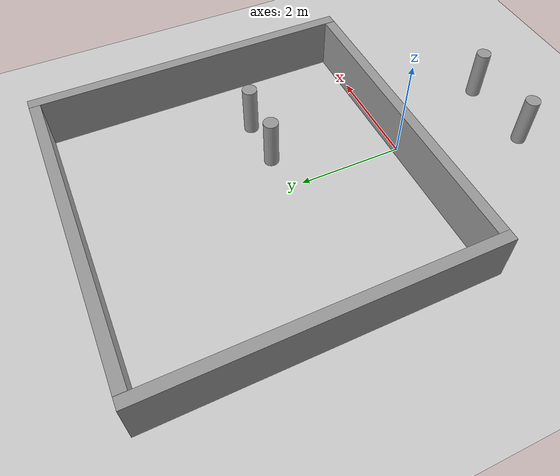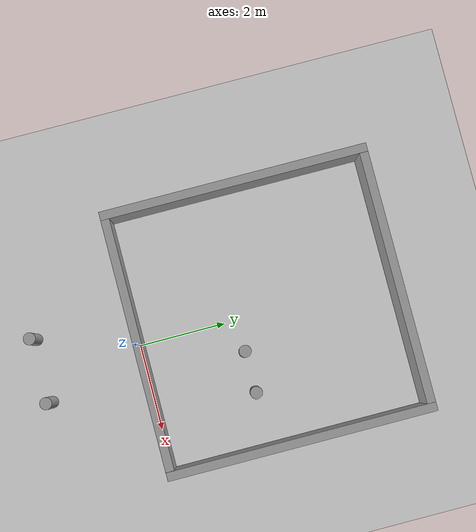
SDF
<sdf version="1.6">
 <world name="default">
  <light name="sun" type="directional">
   <pose>0 0 10 0 -0 0</pose>
   <diffuse>0.8 0.8 0.8 1</diffuse>
   <specular>0.2 0.2 0.2 1</specular>
   <attenuation>
    <range>1000</range>
    <constant>0.9</constant>
    <linear>0.01</linear>
    <quadratic>0.001</quadratic>
   </attenuation>
   <direction>-0.5 0.1 -0.9</direction>
  </light>
  <model name="ground_plane">
   <static>1</static>
   <link name="link">
    <collision name="collision">
     <geometry><plane><normal>0 0 1</normal><size>100 100</size></plane></geometry>
     <surface>
      <contact><collide_bitmask>65535</collide_bitmask></contact>
      <friction><ode><mu>100</mu><mu2>50</mu2></ode></friction>
     </surface>
    </collision>
    <visual name="visual">
     <cast_shadows>0</cast_shadows>
     <geometry><plane><normal>0 0 1</normal><size>100 100</size></plane></geometry>
     <material>
      <script><uri>file://media/materials/scripts/gazebo.material</uri><name>Gazebo/Grey</name></script>
     </material>
    </visual>
   </link>
  </model>
  <gravity>0 0 -9.8</gravity>
  <magnetic_field>6e-06 2.3e-05 -4.2e-05</magnetic_field>
  <atmosphere type="adiabatic"/>
  <physics name="default_physics" default="0" type="ode">
   <max_step_size>0.001</max_step_size>
   <real_time_factor>1</real_time_factor>
   <real_time_update_rate>1000</real_time_update_rate>
  </physics>
  <scene><ambient>0.4 0.4 0.4 1</ambient><background>0.7 0.7 0.7 1</background><shadows>1</shadows></scene>
  <audio><device>default</device></audio>
  <spherical_coordinates>
   <surface_model>EARTH_WGS84</surface_model>
   <latitude_deg>0</latitude_deg>
   <longitude_deg>0</longitude_deg>
   <elevation>0</elevation>
   <heading_deg>0</heading_deg>
  </spherical_coordinates>
  <model name="cylinder1">
   <link name="cylink1">
    <inertial>
     <mass>500</mass>
     <inertia><ixx>0.145833</ixx><ixy>0</ixy><ixz>0</ixz><iyy>0.145833</iyy><iyz>0</iyz><izz>0.125</izz></inertia>
    </inertial>
    <visual name="visual">
     <geometry><cylinder><radius>0.14</radius><length>1</length></cylinder></geometry>
     <material>
      <script><name>Gazebo/Grey</name><uri>file://media/materials/scripts/gazebo.material</uri></script>
      <shader type="vertex"><normal_map>__default__</normal_map></shader>
      <ambient>0.3 0.3 0.3 1</ambient>
      <diffuse>0.7 0.7 0.7 1</diffuse>
      <specular>0.01 0.01 0.01 1</specular>
      <emissive>0 0 0 1</emissive>
     </material>
    </visual>
    <collision name="collision">
     <geometry><cylinder><radius>0.14</radius><length>1</length></cylinder></geometry>
     <surface>
      <friction>
       <ode><mu>1</mu><mu2>1</mu2><fdir1>0 0 0</fdir1><slip1>0</slip1><slip2>0</slip2></ode>
       <torsional>
        <coefficient>1</coefficient>
        <patch_radius>0</patch_radius>
        <surface_radius>0</surface_radius>
        <use_patch_radius>1</use_patch_radius>
        <ode><slip>0</slip></ode>
       </torsional>
      </friction>
      <bounce><restitution_coefficient>0</restitution_coefficient><threshold>1e+06</threshold></bounce>
      <contact>
       <collide_without_contact>0</collide_without_contact>
       <collide_without_contact_bitmask>1</collide_without_contact_bitmask>
       <collide_bitmask>1</collide_bitmask>
       <ode>
        <soft_cfm>0</soft_cfm>
        <soft_erp>0.2</soft_erp>
        <kp>1e+13</kp>
        <kd>1</kd>
        <max_vel>0.01</max_vel>
        <min_depth>0</min_depth>
       </ode>
       <bullet>
        <split_impulse>1</split_impulse>
        <split_impulse_penetration_threshold>-0.01</split_impulse_penetration_threshold>
        <soft_cfm>0</soft_cfm>
        <soft_erp>0.2</soft_erp>
        <kp>1e+13</kp>
        <kd>1</kd>
       </bullet>
      </contact>
     </surface>
    </collision>
   </link>
   <static>0</static>
   <pose>-0.744466 -2.29124 0.5 0 -0 0</pose>
  </model>
  <model name="cylinder2">
   <link name="cylink2">
    <inertial>
     <mass>500</mass>
     <inertia><ixx>0.145833</ixx><ixy>0</ixy><ixz>0</ixz><iyy>0.145833</iyy><iyz>0</iyz><izz>0.125</izz></inertia>
    </inertial>
    <visual name="visual">
     <geometry><cylinder><radius>0.14</radius><length>1</length></cylinder></geometry>
     <material>
      <script><name>Gazebo/Grey</name><uri>file://media/materials/scripts/gazebo.material</uri></script>
      <shader type="vertex"><normal_map>__default__</normal_map></shader>
      <ambient>0.3 0.3 0.3 1</ambient>
      <diffuse>0.7 0.7 0.7 1</diffuse>
      <specular>0.01 0.01 0.01 1</specular>
      <emissive>0 0 0 1</emissive>
     </material>
    </visual>
    <collision name="collision">
     <geometry><cylinder><radius>0.14</radius><length>1</length></cylinder></geometry>
     <surface>
      <friction>
       <ode><mu>1</mu><mu2>1</mu2><fdir1>0 0 0</fdir1><slip1>0</slip1><slip2>0</slip2></ode>
       <torsional>
        <coefficient>1</coefficient>
        <patch_radius>0</patch_radius>
        <surface_radius>0</surface_radius>
        <use_patch_radius>1</use_patch_radius>
        <ode><slip>0</slip></ode>
       </torsional>
      </friction>
      <bounce><restitution_coefficient>0</restitution_coefficient><threshold>1e+06</threshold></bounce>
      <contact>
       <collide_without_contact>0</collide_without_contact>
       <collide_without_contact_bitmask>1</collide_without_contact_bitmask>
       <collide_bitmask>1</collide_bitmask>
       <ode>
        <soft_cfm>0</soft_cfm>
        <soft_erp>0.2</soft_erp>
        <kp>1e+13</kp>
        <kd>1</kd>
        <max_vel>0.01</max_vel>
        <min_depth>0</min_depth>
       </ode>
       <bullet>
        <split_impulse>1</split_impulse>
        <split_impulse_penetration_threshold>-0.01</split_impulse_penetration_threshold>
        <soft_cfm>0</soft_cfm>
        <soft_erp>0.2</soft_erp>
        <kp>1e+13</kp>
        <kd>1</kd>
       </bullet>
      </contact>
     </surface>
    </collision>
   </link>
   <static>0</static>
   <pose>0.744466 -2.29124 0.5 0 -0 0</pose>
  </model>
  <model name="cylinder3">
   <link name="cylink3">
    <inertial>
     <mass>500</mass>
     <inertia><ixx>0.145833</ixx><ixy>0</ixy><ixz>0</ixz><iyy>0.145833</iyy><iyz>0</iyz><izz>0.125</izz></inertia>
    </inertial>
    <visual name="visual">
     <geometry><cylinder><radius>0.14</radius><length>1</length></cylinder></geometry>
     <material>
      <script><name>Gazebo/Grey</name><uri>file://media/materials/scripts/gazebo.material</uri></script>
      <shader type="vertex"><normal_map>__default__</normal_map></shader>
      <ambient>0.3 0.3 0.3 1</ambient>
      <diffuse>0.7 0.7 0.7 1</diffuse>
      <specular>0.01 0.01 0.01 1</specular>
      <emissive>0 0 0 1</emissive>
     </material>
    </visual>
    <collision name="collision">
     <geometry><cylinder><radius>0.14</radius><length>1</length></cylinder></geometry>
     <surface>
      <friction>
       <ode><mu>1</mu><mu2>1</mu2><fdir1>0 0 0</fdir1><slip1>0</slip1><slip2>0</slip2></ode>
       <torsional>
        <coefficient>1</coefficient>
        <patch_radius>0</patch_radius>
        <surface_radius>0</surface_radius>
        <use_patch_radius>1</use_patch_radius>
        <ode><slip>0</slip></ode>
       </torsional>
      </friction>
      <bounce><restitution_coefficient>0</restitution_coefficient><threshold>1e+06</threshold></bounce>
      <contact>
       <collide_without_contact>0</collide_without_contact>
       <collide_without_contact_bitmask>1</collide_without_contact_bitmask>
       <collide_bitmask>1</collide_bitmask>
       <ode>
        <soft_cfm>0</soft_cfm>
        <soft_erp>0.2</soft_erp>
        <kp>1e+13</kp>
        <kd>1</kd>
        <max_vel>0.01</max_vel>
        <min_depth>0</min_depth>
       </ode>
       <bullet>
        <split_impulse>1</split_impulse>
        <split_impulse_penetration_threshold>-0.01</split_impulse_penetration_threshold>
        <soft_cfm>0</soft_cfm>
        <soft_erp>0.2</soft_erp>
        <kp>1e+13</kp>
        <kd>1</kd>
       </bullet>
      </contact>
     </surface>
    </collision>
   </link>
   <static>0</static>
   <pose>0.744466 2.29124 0.5 0 -0 0</pose>
  </model>
  <model name="cylinder4">
   <link name="cylink4">
    <inertial>
     <mass>500</mass>
     <inertia><ixx>0.145833</ixx><ixy>0</ixy><ixz>0</ixz><iyy>0.145833</iyy><iyz>0</iyz><izz>0.125</izz></inertia>
    </inertial>
    <visual name="visual">
     <geometry><cylinder><radius>0.14</radius><length>1</length></cylinder></geometry>
     <material>
      <script><name>Gazebo/Grey</name><uri>file://media/materials/scripts/gazebo.material</uri></script>
      <shader type="vertex"><normal_map>__default__</normal_map></shader>
      <ambient>0.3 0.3 0.3 1</ambient>
      <diffuse>0.7 0.7 0.7 1</diffuse>
      <specular>0.01 0.01 0.01 1</specular>
      <emissive>0 0 0 1</emissive>
     </material>
    </visual>
    <collision name="collision">
     <geometry><cylinder><radius>0.14</radius><length>1</length></cylinder></geometry>
     <surface>
      <friction>
       <ode><mu>1</mu><mu2>1</mu2><fdir1>0 0 0</fdir1><slip1>0</slip1><slip2>0</slip2></ode>
       <torsional>
        <coefficient>1</coefficient>
        <patch_radius>0</patch_radius>
        <surface_radius>0</surface_radius>
        <use_patch_radius>1</use_patch_radius>
        <ode><slip>0</slip></ode>
       </torsional>
      </friction>
      <bounce><restitution_coefficient>0</restitution_coefficient><threshold>1e+06</threshold></bounce>
      <contact>
       <collide_without_contact>0</collide_without_contact>
       <collide_without_contact_bitmask>1</collide_without_contact_bitmask>
       <collide_bitmask>1</collide_bitmask>
       <ode>
        <soft_cfm>0</soft_cfm>
        <soft_erp>0.2</soft_erp>
        <kp>1e+13</kp>
        <kd>1</kd>
        <max_vel>0.01</max_vel>
        <min_depth>0</min_depth>
       </ode>
       <bullet>
        <split_impulse>1</split_impulse>
        <split_impulse_penetration_threshold>-0.01</split_impulse_penetration_threshold>
        <soft_cfm>0</soft_cfm>
        <soft_erp>0.2</soft_erp>
        <kp>1e+13</kp>
        <kd>1</kd>
       </bullet>
      </contact>
     </surface>
    </collision>
   </link>
   <static>0</static>
   <pose>1.7 2.3 0.5 0 -0 0</pose>
  </model>
  <model name="fence">
   <link name="link">
    <inertial>
     <mass>100</mass>
     <inertia><ixx>16.6667</ixx><ixy>0</ixy><ixz>0</ixz><iyy>16.6667</iyy><iyz>0</iyz><izz>16.6667</izz></inertia>
    </inertial>
    <visual name="visual">
     <geometry><box><size>5.8 0.2 1</size></box></geometry>
     <material>
      <script><name>Gazebo/Grey</name><uri>file://media/materials/scripts/gazebo.material</uri></script>
      <shader type="vertex"><normal_map>__default__</normal_map></shader>
      <ambient>0.3 0.3 0.3 1</ambient>
      <diffuse>0.7 0.7 0.7 1</diffuse>
      <specular>0.01 0.01 0.01 1</specular>
      <emissive>0 0 0 1</emissive>
     </material>
    </visual>
    <collision name="collision">
     <geometry><box><size>5.8 0.2 1</size></box></geometry>
     <surface>
      <friction>
       <ode><mu>1</mu><mu2>1</mu2><fdir1>0 0 0</fdir1><slip1>0</slip1><slip2>0</slip2></ode>
       <torsional>
        <coefficient>1</coefficient>
        <patch_radius>0</patch_radius>
        <surface_radius>0</surface_radius>
        <use_patch_radius>1</use_patch_radius>
        <ode><slip>0</slip></ode>
       </torsional>
      </friction>
      <bounce><restitution_coefficient>0</restitution_coefficient><threshold>1e+06</threshold></bounce>
      <contact>
       <collide_without_contact>0</collide_without_contact>
       <collide_without_contact_bitmask>1</collide_without_contact_bitmask>
       <collide_bitmask>1</collide_bitmask>
       <ode>
        <soft_cfm>0</soft_cfm>
        <soft_erp>0.2</soft_erp>
        <kp>1e+13</kp>
        <kd>1</kd>
        <max_vel>0.01</max_vel>
        <min_depth>0</min_depth>
       </ode>
       <bullet>
        <split_impulse>1</split_impulse>
        <split_impulse_penetration_threshold>-0.01</split_impulse_penetration_threshold>
        <soft_cfm>0</soft_cfm>
        <soft_erp>0.2</soft_erp>
        <kp>1e+13</kp>
        <kd>1</kd>
       </bullet>
      </contact>
     </surface>
    </collision>
   </link>
   <link name="link_clone">
    <inertial>
     <mass>100</mass>
     <inertia><ixx>16.6667</ixx><ixy>0</ixy><ixz>0</ixz><iyy>16.6667</iyy><iyz>0</iyz><izz>16.6667</izz></inertia>
    </inertial>
    <pose>-2.99969 3.00111 -2.9e-05 -1e-05 -0 1.5708</pose>
    <visual name="visual">
     <geometry><box><size>6.2 0.2 1</size></box></geometry>
     <material>
      <script><name>Gazebo/Grey</name><uri>file://media/materials/scripts/gazebo.material</uri></script>
      <shader type="vertex"><normal_map>__default__</normal_map></shader>
      <ambient>0.3 0.3 0.3 1</ambient>
      <diffuse>0.7 0.7 0.7 1</diffuse>
      <specular>0.01 0.01 0.01 1</specular>
      <emissive>0 0 0 1</emissive>
     </material>
    </visual>
    <collision name="collision">
     <geometry><box><size>6.2 0.2 1</size></box></geometry>
     <surface>
      <friction>
       <ode><mu>1</mu><mu2>1</mu2><fdir1>0 0 0</fdir1><slip1>0</slip1><slip2>0</slip2></ode>
       <torsional>
        <coefficient>1</coefficient>
        <patch_radius>0</patch_radius>
        <surface_radius>0</surface_radius>
        <use_patch_radius>1</use_patch_radius>
        <ode><slip>0</slip></ode>
       </torsional>
      </friction>
      <bounce><restitution_coefficient>0</restitution_coefficient><threshold>1e+06</threshold></bounce>
      <contact>
       <collide_without_contact>0</collide_without_contact>
       <collide_without_contact_bitmask>1</collide_without_contact_bitmask>
       <collide_bitmask>1</collide_bitmask>
       <ode>
        <soft_cfm>0</soft_cfm>
        <soft_erp>0.2</soft_erp>
        <kp>1e+13</kp>
        <kd>1</kd>
        <max_vel>0.01</max_vel>
        <min_depth>0</min_depth>
       </ode>
       <bullet>
        <split_impulse>1</split_impulse>
        <split_impulse_penetration_threshold>-0.01</split_impulse_penetration_threshold>
        <soft_cfm>0</soft_cfm>
        <soft_erp>0.2</soft_erp>
        <kp>1e+13</kp>
        <kd>1</kd>
       </bullet>
      </contact>
     </surface>
    </collision>
   </link>
   <link name="link_clone_0">
    <inertial>
     <mass>100</mass>
     <inertia><ixx>16.6667</ixx><ixy>0</ixy><ixz>0</ixz><iyy>16.6667</iyy><iyz>0</iyz><izz>16.6667</izz></inertia>
    </inertial>
    <pose>0.002993 6.00149 -5.9e-05 -1e-05 0 0</pose>
    <visual name="visual">
     <geometry><box><size>5.8 0.2 1</size></box></geometry>
     <material>
      <script><name>Gazebo/Grey</name><uri>file://media/materials/scripts/gazebo.material</uri></script>
      <shader type="vertex"><normal_map>__default__</normal_map></shader>
      <ambient>0.3 0.3 0.3 1</ambient>
      <diffuse>0.7 0.7 0.7 1</diffuse>
      <specular>0.01 0.01 0.01 1</specular>
      <emissive>0 0 0 1</emissive>
     </material>
    </visual>
    <collision name="collision">
     <geometry><box><size>5.8 0.2 1</size></box></geometry>
     <surface>
      <friction>
       <ode><mu>1</mu><mu2>1</mu2><fdir1>0 0 0</fdir1><slip1>0</slip1><slip2>0</slip2></ode>
       <torsional>
        <coefficient>1</coefficient>
        <patch_radius>0</patch_radius>
        <surface_radius>0</surface_radius>
        <use_patch_radius>1</use_patch_radius>
        <ode><slip>0</slip></ode>
       </torsional>
      </friction>
      <bounce><restitution_coefficient>0</restitution_coefficient><threshold>1e+06</threshold></bounce>
      <contact>
       <collide_without_contact>0</collide_without_contact>
       <collide_without_contact_bitmask>1</collide_without_contact_bitmask>
       <collide_bitmask>1</collide_bitmask>
       <ode>
        <soft_cfm>0</soft_cfm>
        <soft_erp>0.2</soft_erp>
        <kp>1e+13</kp>
        <kd>1</kd>
        <max_vel>0.01</max_vel>
        <min_depth>0</min_depth>
       </ode>
       <bullet>
        <split_impulse>1</split_impulse>
        <split_impulse_penetration_threshold>-0.01</split_impulse_penetration_threshold>
        <soft_cfm>0</soft_cfm>
        <soft_erp>0.2</soft_erp>
        <kp>1e+13</kp>
        <kd>1</kd>
       </bullet>
      </contact>
     </surface>
    </collision>
   </link>
   <link name="link_clone_clone">
    <inertial>
     <mass>100</mass>
     <inertia><ixx>16.6667</ixx><ixy>0</ixy><ixz>0</ixz><iyy>16.6667</iyy><iyz>0</iyz><izz>16.6667</izz></inertia>
    </inertial>
    <pose>3.00439 3.00134 -5.8e-05 -1e-05 1e-05 1.5708</pose>
    <visual name="visual">
     <geometry><box><size>6.2 0.2 1</size></box></geometry>
     <material>
      <script><name>Gazebo/Grey</name><uri>file://media/materials/scripts/gazebo.material</uri></script>
      <shader type="vertex"><normal_map>__default__</normal_map></shader>
      <ambient>0.3 0.3 0.3 1</ambient>
      <diffuse>0.7 0.7 0.7 1</diffuse>
      <specular>0.01 0.01 0.01 1</specular>
      <emissive>0 0 0 1</emissive>
     </material>
    </visual>
    <collision name="collision">
     <geometry><box><size>6.2 0.2 1</size></box></geometry>
     <surface>
      <friction>
       <ode><mu>1</mu><mu2>1</mu2><fdir1>0 0 0</fdir1><slip1>0</slip1><slip2>0</slip2></ode>
       <torsional>
        <coefficient>1</coefficient>
        <patch_radius>0</patch_radius>
        <surface_radius>0</surface_radius>
        <use_patch_radius>1</use_patch_radius>
        <ode><slip>0</slip></ode>
       </torsional>
      </friction>
      <bounce><restitution_coefficient>0</restitution_coefficient><threshold>1e+06</threshold></bounce>
      <contact>
       <collide_without_contact>0</collide_without_contact>
       <collide_without_contact_bitmask>1</collide_without_contact_bitmask>
       <collide_bitmask>1</collide_bitmask>
       <ode>
        <soft_cfm>0</soft_cfm>
        <soft_erp>0.2</soft_erp>
        <kp>1e+13</kp>
        <kd>1</kd>
        <max_vel>0.01</max_vel>
        <min_depth>0</min_depth>
       </ode>
       <bullet>
        <split_impulse>1</split_impulse>
        <split_impulse_penetration_threshold>-0.01</split_impulse_penetration_threshold>
        <soft_cfm>0</soft_cfm>
        <soft_erp>0.2</soft_erp>
        <kp>1e+13</kp>
        <kd>1</kd>
       </bullet>
      </contact>
     </surface>
    </collision>
   </link>
   <static>0</static>
   <pose>0 0 0.5 0 -0 0</pose>
  </model>
 </world>
</sdf>
